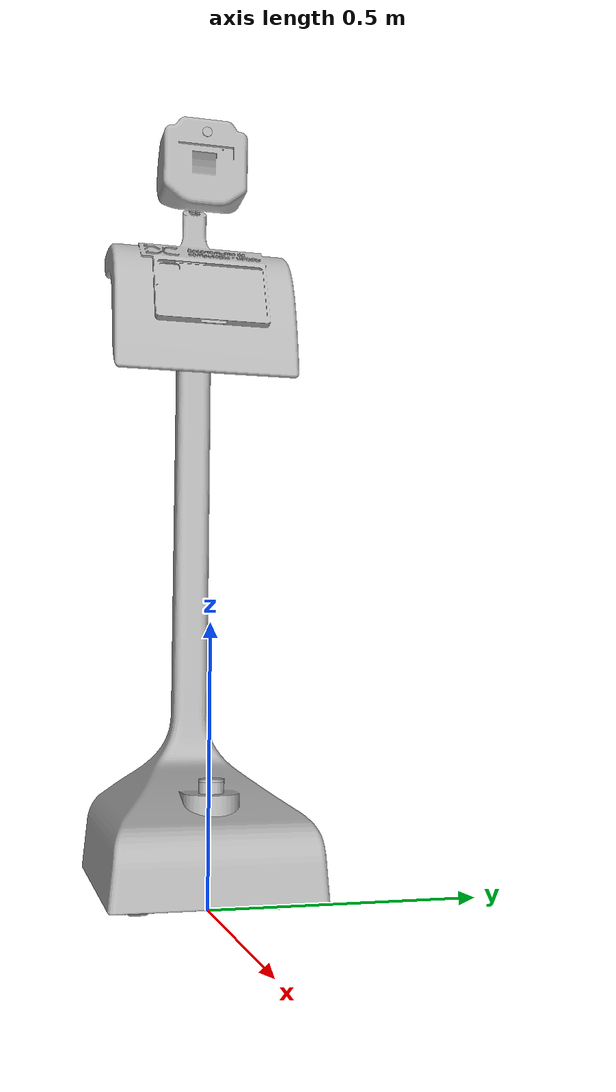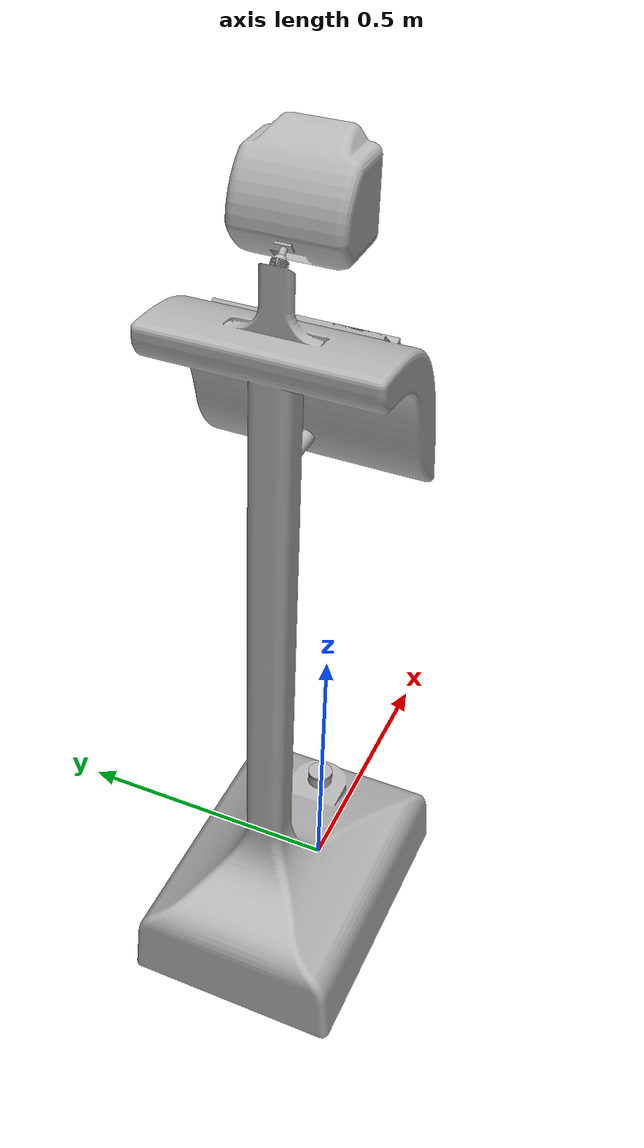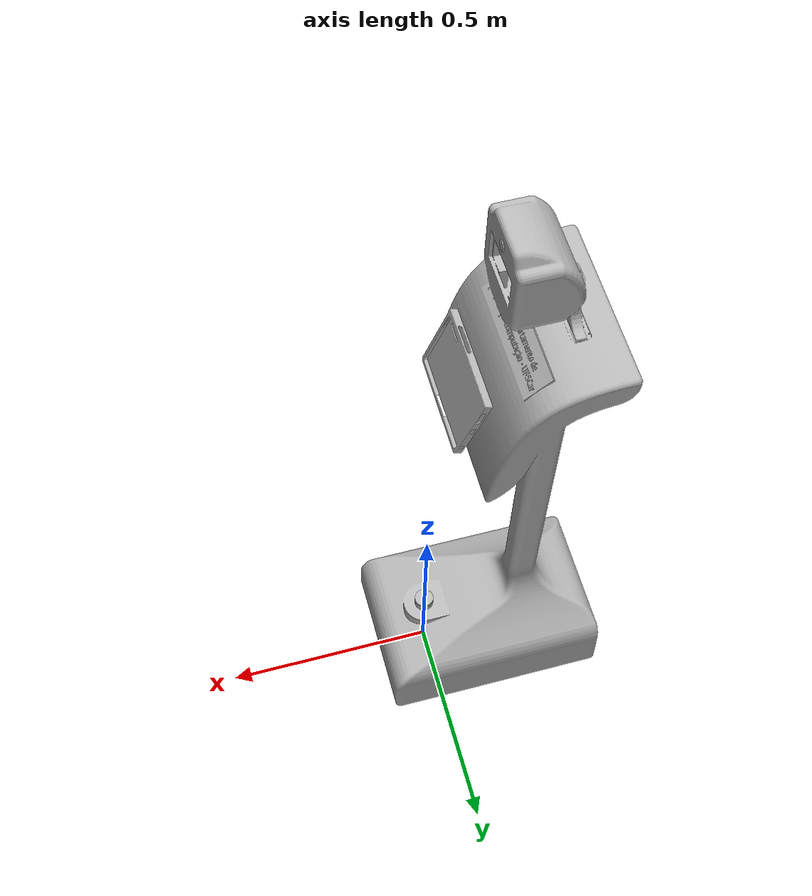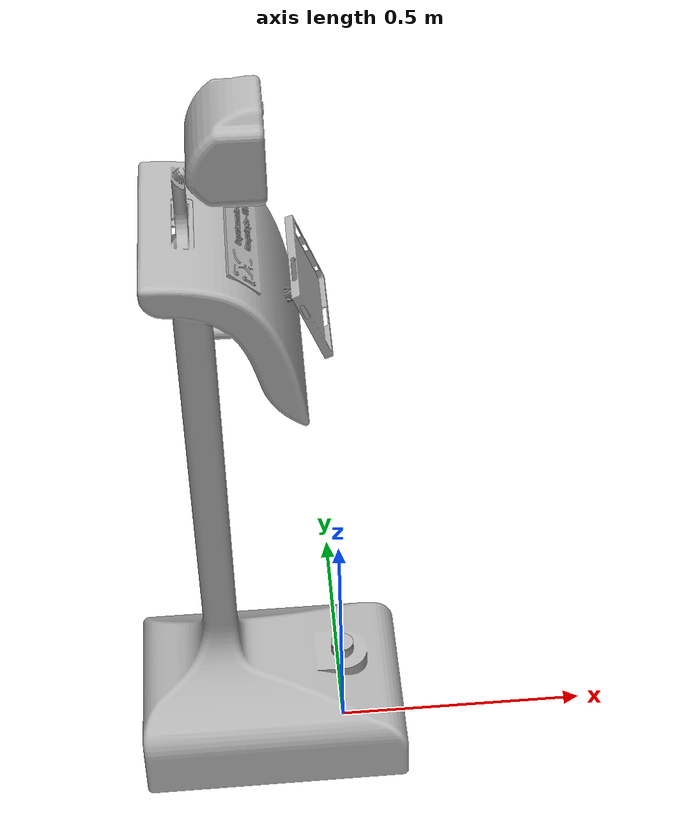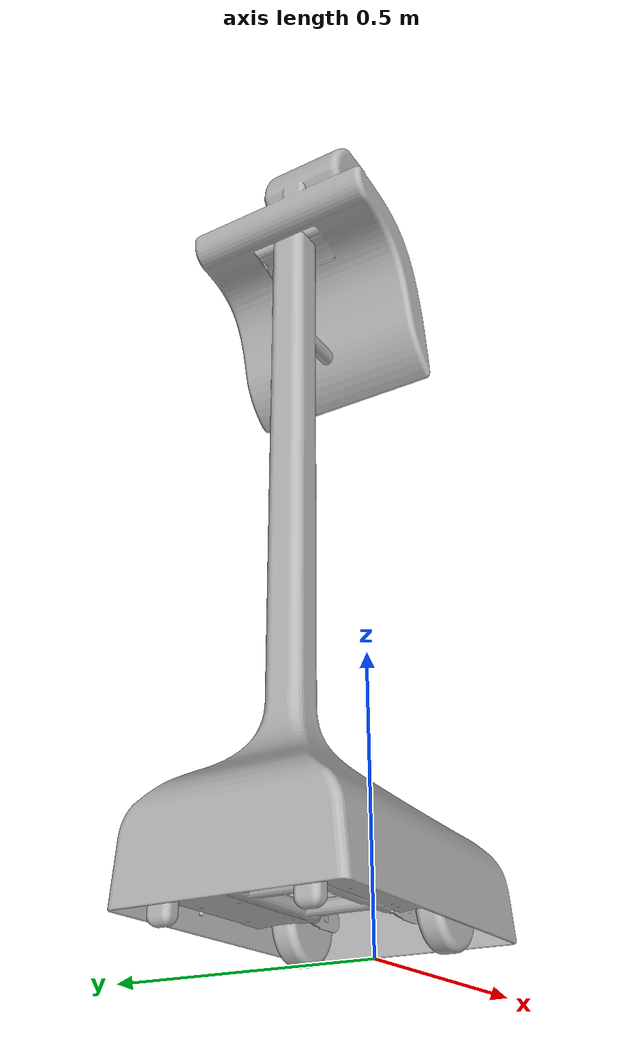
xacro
<?xml version="1.0"?>
<robot name="modubot_model" xmlns:xacro="http://www.ros.org/wiki/xacro">
  <xacro:arg name="cmd_vel_topic" default="/cmd_vel_safe"/>
  <xacro:include filename="$(find modubot_model_description)/urdf/modubot_model.xacro"/>

  <gazebo reference="base_link">
    <material>Gazebo/Silver</material>
    <mu1>0.2</mu1>
    <mu2>0.2</mu2>
    <self_collide>false</self_collide>
  </gazebo>

  <gazebo reference="laser">
    <material>Gazebo/Black</material>
    <sensor name="lidar_sensor" type="ray">
      <always_on>true</always_on>
      <visualize>false</visualize>
      <update_rate>10</update_rate>
      <ray>
        <scan>
          <horizontal>
            <samples>720</samples>
            <resolution>1</resolution>
            <min_angle>-3.14159265</min_angle>
            <max_angle>3.14159265</max_angle>
          </horizontal>
        </scan>
        <range>
          <min>0.15</min>
          <max>12.0</max>
          <resolution>0.01</resolution>
        </range>
        <noise>
          <type>gaussian</type>
          <mean>0.0</mean>
          <stddev>0.005</stddev>
        </noise>
      </ray>
      <plugin name="gazebo_ros_lidar" filename="libgazebo_ros_ray_sensor.so">
        <ros>
          <remapping>~/out:=scan</remapping>
        </ros>
        <output_type>sensor_msgs/LaserScan</output_type>
        <frame_name>laser</frame_name>
      </plugin>
    </sensor>
  </gazebo>

  <gazebo reference="left_wheel_1">
    <material>Gazebo/Black</material>
    <mu1>1.5</mu1>
    <mu2>1.5</mu2>
  </gazebo>

  <gazebo reference="right_wheel_1">
    <material>Gazebo/Black</material>
    <mu1>1.5</mu1>
    <mu2>1.5</mu2>
  </gazebo>

  <gazebo reference="left_caster_1">
    <material>Gazebo/Black</material>
    <mu1>0.05</mu1>
    <mu2>0.05</mu2>
  </gazebo>

  <gazebo reference="right_caster_1">
    <material>Gazebo/Black</material>
    <mu1>0.05</mu1>
    <mu2>0.05</mu2>
  </gazebo>

  <gazebo>
    <plugin name="modubot_diff_drive" filename="libgazebo_ros_diff_drive.so">
      <ros>
        <remapping>cmd_vel:=$(arg cmd_vel_topic)</remapping>
      </ros>
      <update_rate>50</update_rate>
      <left_joint>left_wheel_joint</left_joint>
      <right_joint>right_wheel_joint</right_joint>
      <wheel_separation>0.225</wheel_separation>
      <wheel_diameter>0.156</wheel_diameter>
      <max_wheel_acceleration>4.5</max_wheel_acceleration>
      <max_wheel_torque>10.0</max_wheel_torque>
      <odometry_source>0</odometry_source>
      <odometry_frame>odom</odometry_frame>
      <robot_base_frame>base_link</robot_base_frame>
      <publish_odom>true</publish_odom>
      <publish_odom_tf>true</publish_odom_tf>
      <publish_wheel_tf>true</publish_wheel_tf>
      <covariance_x>0.001</covariance_x>
      <covariance_y>0.001</covariance_y>
      <covariance_yaw>0.01</covariance_yaw>
    </plugin>
  </gazebo>
</robot>

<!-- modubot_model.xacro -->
<robot name="modubot_model" xmlns:xacro="http://www.ros.org/wiki/xacro">

<xacro:include filename="$(find modubot_model_description)/urdf/materials.xacro" />
<xacro:arg name="mesh_prefix" default="package://modubot_model_description/meshes" />

<link name="base_link">
  <inertial>
    <origin xyz="-0.14926905473131497 0.0023434434723088758 0.8242367512527994" rpy="0 0 0"/>
    <mass value="8"/>
    <inertia ixx="16.078824" iyy="16.162502" izz="1.316251" ixy="-0.003757" iyz="-0.012533" ixz="-0.435933"/>
  </inertial>
  <visual>
    <origin xyz="0 0 0" rpy="0 0 0"/>
    <geometry>
      <mesh filename="$(arg mesh_prefix)/base_link.stl" scale="0.001 0.001 0.001"/>
    </geometry>
    <material name="silver"/>
  </visual>
  <collision>
    <origin xyz="0 0 0" rpy="0 0 0"/>
    <geometry>
      <mesh filename="$(arg mesh_prefix)/base_link.stl" scale="0.001 0.001 0.001"/>
    </geometry>
  </collision>
</link>

<link name="laser">
  <inertial>
    <origin xyz="2.3627128408571993e-07 8.867168478469967e-08 0.002500135965096101" rpy="0 0 0"/>
    <mass value="0.06"/>
    <inertia ixx="8e-06" iyy="8e-06" izz="1.6e-05" ixy="-0.0" iyz="-0.0" ixz="0.0"/>
  </inertial>
  <visual>
    <origin xyz="-0.002507 -0.004307 -0.219668" rpy="0 0 0"/>
    <geometry>
      <mesh filename="$(arg mesh_prefix)/lidar_1.stl" scale="0.001 0.001 0.001"/>
    </geometry>
    <material name="silver"/>
  </visual>
  <collision>
    <origin xyz="-0.002507 -0.004307 -0.219668" rpy="0 0 0"/>
    <geometry>
      <mesh filename="$(arg mesh_prefix)/lidar_1.stl" scale="0.001 0.001 0.001"/>
    </geometry>
  </collision>
</link>

<link name="right_caster_1">
  <inertial>
    <origin xyz="-4.3542709354804643e-07 0.05000034960366902 -0.022886164583698892" rpy="0 0 0"/>
    <mass value="0.06"/>
    <inertia ixx="0.000117" iyy="9.7e-05" izz="7.1e-05" ixy="-0.0" iyz="-0.0" ixz="0.0"/>
  </inertial>
  <visual>
    <origin xyz="0.375122 0.16578 -0.047978" rpy="0 0 0"/>
    <geometry>
      <mesh filename="$(arg mesh_prefix)/right_caster_1.stl" scale="0.001 0.001 0.001"/>
    </geometry>
    <material name="silver"/>
  </visual>
  <collision>
    <origin xyz="0.375122 0.16578 -0.047978" rpy="0 0 0"/>
    <geometry>
      <mesh filename="$(arg mesh_prefix)/right_caster_1.stl" scale="0.001 0.001 0.001"/>
    </geometry>
  </collision>
</link>

<link name="left_caster_1">
  <inertial>
    <origin xyz="-4.3542709354804643e-07 -0.04999964719258099 -0.022886164583698892" rpy="0 0 0"/>
    <mass value="0.06"/>
    <inertia ixx="0.000117" iyy="9.7e-05" izz="7.1e-05" ixy="-0.0" iyz="-0.0" ixz="0.0"/>
  </inertial>
  <visual>
    <origin xyz="0.375122 -0.16422 -0.047978" rpy="0 0 0"/>
    <geometry>
      <mesh filename="$(arg mesh_prefix)/left_caster_1.stl" scale="0.001 0.001 0.001"/>
    </geometry>
    <material name="silver"/>
  </visual>
  <collision>
    <origin xyz="0.375122 -0.16422 -0.047978" rpy="0 0 0"/>
    <geometry>
      <mesh filename="$(arg mesh_prefix)/left_caster_1.stl" scale="0.001 0.001 0.001"/>
    </geometry>
  </collision>
</link>

<link name="right_wheel_1">
  <inertial>
    <origin xyz="2.752114103439767e-07 -0.021499759694523987 1.9659229817670099e-07" rpy="0 0 0"/>
    <mass value="1.0"/>
    <inertia ixx="0.004845" iyy="0.008397" izz="0.004845" ixy="0.0" iyz="0.0" ixz="0.0"/>
  </inertial>
  <visual>
    <origin xyz="0.001398 0.100604 -0.060978" rpy="0 0 0"/>
    <geometry>
      <mesh filename="$(arg mesh_prefix)/right_wheel_1.stl" scale="0.001 0.001 0.001"/>
    </geometry>
    <material name="silver"/>
  </visual>
  <collision>
    <origin xyz="0.001398 0.100604 -0.060978" rpy="0 0 0"/>
    <geometry>
      <mesh filename="$(arg mesh_prefix)/right_wheel_1.stl" scale="0.001 0.001 0.001"/>
    </geometry>
  </collision>
</link>

<link name="left_wheel_1">
  <inertial>
    <origin xyz="2.752114213573024e-07 0.02150024030547497 1.9659229787832855e-07" rpy="0 0 0"/>
    <mass value="1.0"/>
    <inertia ixx="0.004845" iyy="0.008397" izz="0.004845" ixy="0.0" iyz="0.0" ixz="-0.0"/>
  </inertial>
  <visual>
    <origin xyz="0.001398 -0.106396 -0.060978" rpy="0 0 0"/>
    <geometry>
      <mesh filename="$(arg mesh_prefix)/left_wheel_1.stl" scale="0.001 0.001 0.001"/>
    </geometry>
    <material name="silver"/>
  </visual>
  <collision>
    <origin xyz="0.001398 -0.106396 -0.060978" rpy="0 0 0"/>
    <geometry>
      <mesh filename="$(arg mesh_prefix)/left_wheel_1.stl" scale="0.001 0.001 0.001"/>
    </geometry>
  </collision>
</link>

<link name="camera_1">
  <inertial>
    <origin xyz="-0.007999988540329073 4.989541105802908e-08 -8.848169996689137e-08" rpy="0 0 0"/>
    <mass value="0.04"/>
    <inertia ixx="2e-06" iyy="3e-06" izz="3e-06" ixy="0.0" iyz="0.0" ixz="-0.0"/>
  </inertial>
  <visual>
    <origin xyz="0.101 -0.002 -1.486512" rpy="0 0 0"/>
    <geometry>
      <mesh filename="$(arg mesh_prefix)/camera_1.stl" scale="0.001 0.001 0.001"/>
    </geometry>
    <material name="silver"/>
  </visual>
  <collision>
    <origin xyz="0.101 -0.002 -1.486512" rpy="0 0 0"/>
    <geometry>
      <mesh filename="$(arg mesh_prefix)/camera_1.stl" scale="0.001 0.001 0.001"/>
    </geometry>
  </collision>
</link>

<joint name="lidar_joint" type="fixed">
  <origin xyz="0.002507 0.004307 0.219668" rpy="0 0 3.14159"/>
  <parent link="base_link"/>
  <child link="laser"/>
</joint>

<joint name="right_caster_joint" type="fixed">
  <origin xyz="-0.375122 -0.16578 0.047978" rpy="0 0 0"/>
  <parent link="base_link"/>
  <child link="right_caster_1"/>
</joint>

<joint name="left_caster_joint" type="fixed">
  <origin xyz="-0.375122 0.16422 0.047978" rpy="0 0 0"/>
  <parent link="base_link"/>
  <child link="left_caster_1"/>
</joint>

<joint name="right_wheel_joint" type="continuous">
  <origin xyz="-0.001398 -0.100604 0.060978" rpy="0 0 0"/>
  <parent link="base_link"/>
  <child link="right_wheel_1"/>
  <axis xyz="0.0 1.0 0.0"/>
</joint>

<joint name="left_wheel_joint" type="continuous">
  <origin xyz="-0.001398 0.106396 0.060978" rpy="0 0 0"/>
  <parent link="base_link"/>
  <child link="left_wheel_1"/>
  <axis xyz="0.0 1.0 0.0"/>
</joint>

<joint name="camera_joint" type="fixed">
  <origin xyz="-0.101 0.002 1.486512" rpy="0 0 0"/>
  <parent link="base_link"/>
  <child link="camera_1"/>
</joint>

</robot>

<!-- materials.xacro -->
<robot name="modubot_model" xmlns:xacro="http://www.ros.org/wiki/xacro" >

<material name="silver">
  <color rgba="0.700 0.700 0.700 1.000"/>
</material>

</robot>
